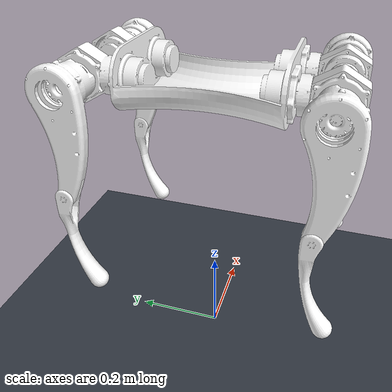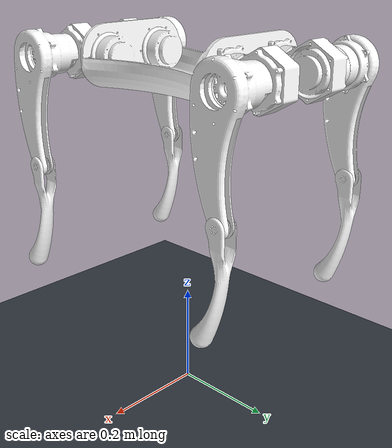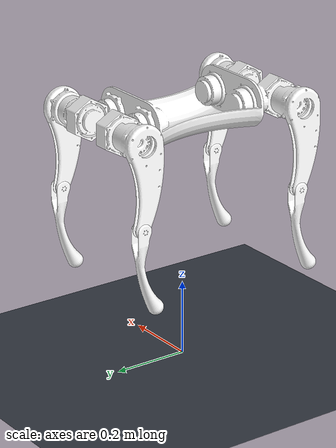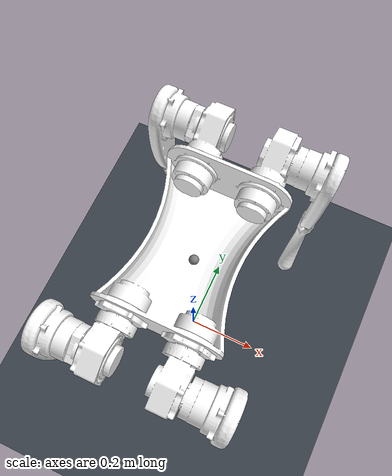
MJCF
<mujoco model="DOggo_AK60">
  <compiler angle="radian" meshdir="meshes" autolimits="true"/>
  <option timestep="0.002" integrator="implicitfast"/>

  <default>
    <joint armature="0.0295" damping="0.1" frictionloss="1.66" actuatorfrcrange="-36.54 36.54"/>
    <motor ctrlrange="-36.54 36.54"/>
    <default class="visual">
      <geom type="mesh" rgba="1 1 1 1" contype="0" conaffinity="0" group="1"/>
    </default>
    <default class="collision">
      <geom type="mesh" rgba="1 1 1 1" contype="1" conaffinity="0" friction="1 0.005 0.0001"/>
    </default>
  </default>

  <asset>
    <texture name="skybox" type="skybox" builtin="gradient" rgb1="0.6 0.75 0.9" rgb2="0.05 0.05 0.1" width="512" height="3072"/>
    <texture name="grid" type="2d" builtin="checker" rgb1="0.25 0.28 0.32" rgb2="0.18 0.2 0.24" width="300" height="300"/>
    <material name="grid" texture="grid" texrepeat="6 6" texuniform="true" reflectance="0.1"/>

    <mesh name="base_link" content_type="model/stl" file="base_link.STL"/>
    <mesh name="hip_fr" content_type="model/stl" file="hip_fr.STL"/>
    <mesh name="thigh_fr" content_type="model/stl" file="thigh_fr.STL"/>
    <mesh name="calf_fr" content_type="model/stl" file="calf_fr.STL"/>
    <mesh name="hip_fl" content_type="model/stl" file="hip_fl.STL"/>
    <mesh name="thigh_fl" content_type="model/stl" file="thigh_fl.STL"/>
    <mesh name="calf_fl" content_type="model/stl" file="calf_fl.STL"/>
    <mesh name="hip_rr" content_type="model/stl" file="hip_rr.STL"/>
    <mesh name="thigh_rr" content_type="model/stl" file="thigh_rr.STL"/>
    <mesh name="calf_rr" content_type="model/stl" file="calf_rr.STL"/>
    <mesh name="hip_rl" content_type="model/stl" file="hip_rl.STL"/>
    <mesh name="thigh_rl" content_type="model/stl" file="thigh_rl.STL"/>
    <mesh name="calf_rl" content_type="model/stl" file="calf_rl.STL"/>
  </asset>

  <worldbody>
    <light pos="0 0 3" dir="0 0 -1" directional="true" diffuse="0.8 0.8 0.8"/>
    <geom name="floor" type="plane" size="0 0 0.05" material="grid" contype="1" conaffinity="1" friction="1 0.005 0.0001"/>

    <body name="base_link" pos="0 0 0.62">
      <freejoint name="root"/>
      <inertial pos="-1.39141166e-07 -0.000102367832 0.0376848659" mass="10.0" fullinertia="0.0692760121 0.0348926756 0.0901430041 -1.99000196e-06 2.93265177e-07 -4.73894399e-07"/>
      <geom name="base_geom" class="collision" mesh="base_link"/>
      <site name="imu" pos="0 0 0" size="0.01"/>

      <!-- ======================= FR ======================= -->
      <body name="hip_fr" pos="0.065 0.166 0.054" quat="0 0 0.7071068 0.7071068">
        <inertial pos="0.00107903741 -1.9324591e-05 0.0598853177" mass="1.38" fullinertia="0.00163362208 0.00109655026 0.000919080121 4.27382957e-07 -2.46750206e-07 -3.70044953e-07"/>
        <joint name="hip_fr" axis="0 0 1" range="-0.8 0.8"/>
        <geom class="visual" mesh="hip_fr"/>
        <body name="thigh_fr" pos="-0.028 0 0.072631">
          <inertial pos="-0.061426225 -0.0361303394 -0.00522454183" mass="1.38" fullinertia="0.00455960606 0.000808284909 0.00385414581 1.59851942e-06 -1.02239875e-06 -0.000127235798"/>
          <joint name="thigh_fr" axis="-1 0 0" range="-1.57 1.57"/>
          <geom class="visual" mesh="thigh_fr"/>
          <body name="calf_fr" pos="-0.08928 -0.21278 0.0096672">
            <inertial pos="0.00314980527 -0.138408659 -0.0146238989" mass="1.38" fullinertia="0.00659921015 0.000624563237 0.00623224513 -2.80823743e-09 -4.74862427e-09 -0.00141145749"/>
            <joint name="knee_fr" axis="1 0 0" range="-2.5 2.5"/>
            <geom class="collision" mesh="calf_fr"/>
          </body>
        </body>
      </body>
      <!-- ======================= FL ======================= -->
      <body name="hip_fl" pos="-0.065 0.166 0.054" quat="0 0 0.7071068 0.7071068">
        <inertial pos="-0.00107903741 1.9324591e-05 0.0598853177" mass="1.38" fullinertia="0.00163362208 0.00109655026 0.000919080121 4.27382957e-07 2.46750206e-07 3.70044953e-07"/>
        <joint name="hip_fl" axis="0 0 -1" range="-0.8 0.8"/>
        <geom class="visual" mesh="hip_fl"/>
        <body name="thigh_fl" pos="0.028 0 0.072631">
          <inertial pos="0.0614262309 -0.0367304728 -0.00484072113" mass="1.38" fullinertia="0.00455960606 0.000808284909 0.00385414581 1.59851911e-06 -1.02239924e-06 -0.000127235798"/>
          <joint name="thigh_fl" axis="1 0 0" range="-1.57 1.57"/>
          <geom class="visual" mesh="thigh_fl"/>
          <body name="calf_fl" pos="0.079 -0.21278 0.0096672">
            <inertial pos="0.00713020527 -0.138408977 -0.0146239567" mass="1.38" fullinertia="0.00659919894 0.000624564926 0.00623223272 -2.8086668e-09 -4.74876255e-09 -0.00141145614"/>
            <joint name="knee_fl" axis="1 0 0" range="-2.5 2.5"/>
            <geom class="collision" mesh="calf_fl"/>
          </body>
        </body>
      </body>
      <!-- ======================= RR ======================= -->
      <body name="hip_rr" pos="0.065 -0.166 0.054" quat="0 0 0.7071068 0.7071068">
        <inertial pos="0.00107903741 1.93245911e-05 -0.0598853177" mass="1.38" fullinertia="0.00163362208 0.00109655026 0.000919080121 -4.27382957e-07 2.46750206e-07 -3.70044953e-07"/>
        <joint name="hip_rr" axis="0 0 -1" range="-0.8 0.8"/>
        <geom class="visual" mesh="hip_rr"/>
        <body name="thigh_rr" pos="-0.028 0 -0.072631">
          <inertial pos="-0.061426225 -0.0361303394 -0.00522454183" mass="1.38" fullinertia="0.00455960606 0.000808284909 0.00385414581 1.59851942e-06 -1.02239875e-06 -0.000127235798"/>
          <joint name="thigh_rr" axis="-1 0 0" range="-1.57 1.57"/>
          <geom class="visual" mesh="thigh_rr"/>
          <body name="calf_rr" pos="-0.08928 -0.21278 0.0096672">
            <inertial pos="0.00314980527 -0.138408659 -0.0146238989" mass="1.38" fullinertia="0.00659921015 0.000624563237 0.00623224513 -2.80823743e-09 -4.74862427e-09 -0.00141145749"/>
            <joint name="knee_rr" axis="-1 0 0" range="-2.5 2.5"/>
            <geom class="collision" mesh="calf_rr"/>
          </body>
        </body>
      </body>
      <!-- ======================= RL ======================= -->
      <body name="hip_rl" pos="-0.065 -0.166 0.054" quat="0 0 0.7071068 0.7071068">
        <inertial pos="-0.00107903741 -1.9324591e-05 -0.0598853177" mass="1.38" fullinertia="0.00163362208 0.00109655026 0.000919080121 -4.27382957e-07 -2.46750206e-07 3.70044953e-07"/>
        <joint name="hip_rl" axis="0 0 1" range="-0.8 0.8"/>
        <geom class="visual" mesh="hip_rl"/>
        <body name="thigh_rl" pos="0.028 0 -0.072631">
          <inertial pos="0.0614262309 -0.0367304728 -0.00484072113" mass="1.38" fullinertia="0.00455960606 0.000808284909 0.00385414581 1.59851911e-06 -1.02239924e-06 -0.000127235798"/>
          <joint name="thigh_rl" axis="1 0 0" range="-1.57 1.57"/>
          <geom class="visual" mesh="thigh_rl"/>
          <body name="calf_rl" pos="0.079 -0.21278 0.0096672">
            <inertial pos="0.00713020527 -0.138408659 -0.0146238989" mass="1.38" fullinertia="0.00659921015 0.000624563237 0.00623224513 -2.80825341e-09 -4.74862861e-09 -0.00141145749"/>
            <joint name="knee_rl" axis="-1 0 0" range="-2.5 2.5"/>
            <geom class="collision" mesh="calf_rl"/>
          </body>
        </body>
      </body>
    </body>
  </worldbody>

  <actuator>
    <motor name="act_hip_fr" joint="hip_fr"/>
    <motor name="act_thigh_fr" joint="thigh_fr"/>
    <motor name="act_knee_fr" joint="knee_fr"/>
    <motor name="act_hip_fl" joint="hip_fl"/>
    <motor name="act_thigh_fl" joint="thigh_fl"/>
    <motor name="act_knee_fl" joint="knee_fl"/>
    <motor name="act_hip_rr" joint="hip_rr"/>
    <motor name="act_thigh_rr" joint="thigh_rr"/>
    <motor name="act_knee_rr" joint="knee_rr"/>
    <motor name="act_hip_rl" joint="hip_rl"/>
    <motor name="act_thigh_rl" joint="thigh_rl"/>
    <motor name="act_knee_rl" joint="knee_rl"/>
  </actuator>

  <sensor>
    <jointpos name="q_hip_fr" joint="hip_fr"/>
    <jointpos name="q_thigh_fr" joint="thigh_fr"/>
    <jointpos name="q_knee_fr" joint="knee_fr"/>
    <jointpos name="q_hip_fl" joint="hip_fl"/>
    <jointpos name="q_thigh_fl" joint="thigh_fl"/>
    <jointpos name="q_knee_fl" joint="knee_fl"/>
    <jointpos name="q_hip_rr" joint="hip_rr"/>
    <jointpos name="q_thigh_rr" joint="thigh_rr"/>
    <jointpos name="q_knee_rr" joint="knee_rr"/>
    <jointpos name="q_hip_rl" joint="hip_rl"/>
    <jointpos name="q_thigh_rl" joint="thigh_rl"/>
    <jointpos name="q_knee_rl" joint="knee_rl"/>
    <jointvel name="dq_hip_fr" joint="hip_fr"/>
    <jointvel name="dq_thigh_fr" joint="thigh_fr"/>
    <jointvel name="dq_knee_fr" joint="knee_fr"/>
    <jointvel name="dq_hip_fl" joint="hip_fl"/>
    <jointvel name="dq_thigh_fl" joint="thigh_fl"/>
    <jointvel name="dq_knee_fl" joint="knee_fl"/>
    <jointvel name="dq_hip_rr" joint="hip_rr"/>
    <jointvel name="dq_thigh_rr" joint="thigh_rr"/>
    <jointvel name="dq_knee_rr" joint="knee_rr"/>
    <jointvel name="dq_hip_rl" joint="hip_rl"/>
    <jointvel name="dq_thigh_rl" joint="thigh_rl"/>
    <jointvel name="dq_knee_rl" joint="knee_rl"/>
    <jointactuatorfrc name="tau_hip_fr" joint="hip_fr"/>
    <jointactuatorfrc name="tau_thigh_fr" joint="thigh_fr"/>
    <jointactuatorfrc name="tau_knee_fr" joint="knee_fr"/>
    <jointactuatorfrc name="tau_hip_fl" joint="hip_fl"/>
    <jointactuatorfrc name="tau_thigh_fl" joint="thigh_fl"/>
    <jointactuatorfrc name="tau_knee_fl" joint="knee_fl"/>
    <jointactuatorfrc name="tau_hip_rr" joint="hip_rr"/>
    <jointactuatorfrc name="tau_thigh_rr" joint="thigh_rr"/>
    <jointactuatorfrc name="tau_knee_rr" joint="knee_rr"/>
    <jointactuatorfrc name="tau_hip_rl" joint="hip_rl"/>
    <jointactuatorfrc name="tau_thigh_rl" joint="thigh_rl"/>
    <jointactuatorfrc name="tau_knee_rl" joint="knee_rl"/>
    <accelerometer name="imu_acc" site="imu"/>
    <gyro name="imu_gyro" site="imu"/>
    <framequat name="imu_quat" objtype="site" objname="imu"/>
  </sensor>

  <custom>
    <!-- peak torque [Nm], rated torque [Nm], no-load speed [rad/s], rated speed [rad/s], total ratio -->
    <numeric name="ak60_joint_limits" data="36.54 12.18 11.55 8.85 34.8"/>
  </custom>
</mujoco>
